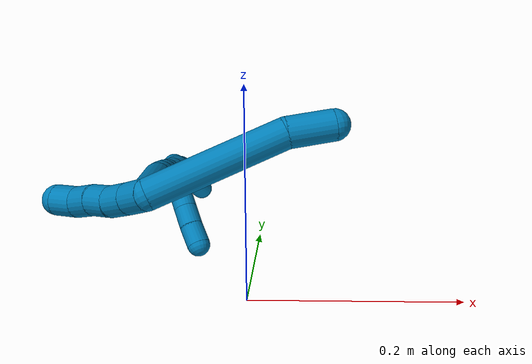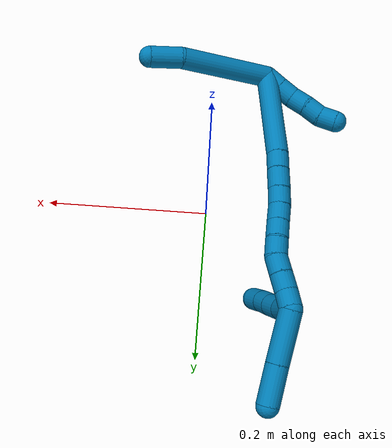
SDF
<sdf version="1.7">
 <world name="default">
  <model name="9">
   <static>0</static>
   <link name="9">
    <collision name="collision-cylinder-e_1_2_8">
     <pose>-0.049028 -0.027655 -0.003531 1.6978 -1.05374 -1.16776</pose>
     <geometry><cylinder><radius>0.0125</radius><length>0.112802</length></cylinder></geometry>
     <surface>
      <friction><ode><mu>1.16</mu><mu2>1.16</mu2><slip1>0</slip1><slip2>0</slip2></ode></friction>
      <contact><ode><kp>1e+06</kp><kd>1</kd><max_vel>0</max_vel><min_depth>0.001</min_depth></ode></contact>
     </surface>
    </collision>
    <visual name="visual-cylinder-e_1_2_8">
     <pose>-0.049028 -0.027655 -0.003531 1.6978 -1.05374 -1.16776</pose>
     <geometry><cylinder><radius>0.0125</radius><length>0.112802</length></cylinder></geometry>
     <material><ambient>0 0.490196 0.709804 1</ambient></material>
    </visual>
    <collision name="collision-cylinder-e_2_8_6">
     <pose>-0.114959 -0.062463 -0.004051 1.1722 -1.1404 -0.805001</pose>
     <geometry><cylinder><radius>0.0125</radius><length>0.037198</length></cylinder></geometry>
     <surface>
      <friction><ode><mu>1.16</mu><mu2>1.16</mu2><slip1>0</slip1><slip2>0</slip2></ode></friction>
      <contact><ode><kp>1e+06</kp><kd>1</kd><max_vel>0</max_vel><min_depth>0.001</min_depth></ode></contact>
     </surface>
    </collision>
    <visual name="visual-cylinder-e_2_8_6">
     <pose>-0.114959 -0.062463 -0.004051 1.1722 -1.1404 -0.805001</pose>
     <geometry><cylinder><radius>0.0125</radius><length>0.037198</length></cylinder></geometry>
     <material><ambient>0 0.490196 0.709804 1</ambient></material>
    </visual>
    <collision name="collision-cylinder-e_1_2_9">
     <pose>0.003534 0.008826 -0.0031 -1.90857 0.361209 -0.504355</pose>
     <geometry><cylinder><radius>0.0125</radius><length>0.02</length></cylinder></geometry>
     <surface>
      <friction><ode><mu>1.16</mu><mu2>1.16</mu2><slip1>0</slip1><slip2>0</slip2></ode></friction>
      <contact><ode><kp>1e+06</kp><kd>1</kd><max_vel>0</max_vel><min_depth>0.001</min_depth></ode></contact>
     </surface>
    </collision>
    <visual name="visual-cylinder-e_1_2_9">
     <pose>0.003534 0.008826 -0.0031 -1.90857 0.361209 -0.504355</pose>
     <geometry><cylinder><radius>0.0125</radius><length>0.02</length></cylinder></geometry>
     <material><ambient>0 0.490196 0.709804 1</ambient></material>
    </visual>
    <collision name="collision-cylinder-e_2_9_10">
     <pose>0.010756 0.026318 -0.009563 -1.94096 0.37774 -0.544554</pose>
     <geometry><cylinder><radius>0.0125</radius><length>0.02</length></cylinder></geometry>
     <surface>
      <friction><ode><mu>1.16</mu><mu2>1.16</mu2><slip1>0</slip1><slip2>0</slip2></ode></friction>
      <contact><ode><kp>1e+06</kp><kd>1</kd><max_vel>0</max_vel><min_depth>0.001</min_depth></ode></contact>
     </surface>
    </collision>
    <visual name="visual-cylinder-e_2_9_10">
     <pose>0.010756 0.026318 -0.009563 -1.94096 0.37774 -0.544554</pose>
     <geometry><cylinder><radius>0.0125</radius><length>0.02</length></cylinder></geometry>
     <material><ambient>0 0.490196 0.709804 1</ambient></material>
    </visual>
    <collision name="collision-cylinder-e_3_10_11">
     <pose>0.018203 0.042781 -0.017932 -2.14151 0.38528 -0.685824</pose>
     <geometry><cylinder><radius>0.0125</radius><length>0.02</length></cylinder></geometry>
     <surface>
      <friction><ode><mu>1.16</mu><mu2>1.16</mu2><slip1>0</slip1><slip2>0</slip2></ode></friction>
      <contact><ode><kp>1e+06</kp><kd>1</kd><max_vel>0</max_vel><min_depth>0.001</min_depth></ode></contact>
     </surface>
    </collision>
    <visual name="visual-cylinder-e_3_10_11">
     <pose>0.018203 0.042781 -0.017932 -2.14151 0.38528 -0.685824</pose>
     <geometry><cylinder><radius>0.0125</radius><length>0.02</length></cylinder></geometry>
     <material><ambient>0 0.490196 0.709804 1</ambient></material>
    </visual>
    <collision name="collision-cylinder-e_4_11_12">
     <pose>0.025685 0.059076 -0.026673 -1.98498 0.381586 -0.575362</pose>
     <geometry><cylinder><radius>0.0125</radius><length>0.02</length></cylinder></geometry>
     <surface>
      <friction><ode><mu>1.16</mu><mu2>1.16</mu2><slip1>0</slip1><slip2>0</slip2></ode></friction>
      <contact><ode><kp>1e+06</kp><kd>1</kd><max_vel>0</max_vel><min_depth>0.001</min_depth></ode></contact>
     </surface>
    </collision>
    <visual name="visual-cylinder-e_4_11_12">
     <pose>0.025685 0.059076 -0.026673 -1.98498 0.381586 -0.575362</pose>
     <geometry><cylinder><radius>0.0125</radius><length>0.02</length></cylinder></geometry>
     <material><ambient>0 0.490196 0.709804 1</ambient></material>
    </visual>
    <collision name="collision-cylinder-e_5_12_5">
     <pose>0.035128 0.074052 -0.035438 -2.23087 0.608834 -1.14089</pose>
     <geometry><cylinder><radius>0.0125</radius><length>0.02</length></cylinder></geometry>
     <surface>
      <friction><ode><mu>1.16</mu><mu2>1.16</mu2><slip1>0</slip1><slip2>0</slip2></ode></friction>
      <contact><ode><kp>1e+06</kp><kd>1</kd><max_vel>0</max_vel><min_depth>0.001</min_depth></ode></contact>
     </surface>
    </collision>
    <visual name="visual-cylinder-e_5_12_5">
     <pose>0.035128 0.074052 -0.035438 -2.23087 0.608834 -1.14089</pose>
     <geometry><cylinder><radius>0.0125</radius><length>0.02</length></cylinder></geometry>
     <material><ambient>0 0.490196 0.709804 1</ambient></material>
    </visual>
    <collision name="collision-cylinder-e_1_2_13">
     <pose>-0.025598 0.044525 -0.024667 -2.07671 -0.465962 0.765721</pose>
     <geometry><cylinder><radius>0.0125</radius><length>0.11395</length></cylinder></geometry>
     <surface>
      <friction><ode><mu>1.16</mu><mu2>1.16</mu2><slip1>0</slip1><slip2>0</slip2></ode></friction>
      <contact><ode><kp>1e+06</kp><kd>1</kd><max_vel>0</max_vel><min_depth>0.001</min_depth></ode></contact>
     </surface>
    </collision>
    <visual name="visual-cylinder-e_1_2_13">
     <pose>-0.025598 0.044525 -0.024667 -2.07671 -0.465962 0.765721</pose>
     <geometry><cylinder><radius>0.0125</radius><length>0.11395</length></cylinder></geometry>
     <material><ambient>0 0.490196 0.709804 1</ambient></material>
    </visual>
    <collision name="collision-cylinder-e_2_13_14">
     <pose>-0.056609 0.097094 -0.053404 -2.0391 -0.540684 0.846947</pose>
     <geometry><cylinder><radius>0.0125</radius><length>0.021031</length></cylinder></geometry>
     <surface>
      <friction><ode><mu>1.16</mu><mu2>1.16</mu2><slip1>0</slip1><slip2>0</slip2></ode></friction>
      <contact><ode><kp>1e+06</kp><kd>1</kd><max_vel>0</max_vel><min_depth>0.001</min_depth></ode></contact>
     </surface>
    </collision>
    <visual name="visual-cylinder-e_2_13_14">
     <pose>-0.056609 0.097094 -0.053404 -2.0391 -0.540684 0.846947</pose>
     <geometry><cylinder><radius>0.0125</radius><length>0.021031</length></cylinder></geometry>
     <material><ambient>0 0.490196 0.709804 1</ambient></material>
    </visual>
    <collision name="collision-cylinder-e_3_14_15">
     <pose>-0.068005 0.114639 -0.061955 -2.0116 -0.517807 0.791489</pose>
     <geometry><cylinder><radius>0.0125</radius><length>0.024178</length></cylinder></geometry>
     <surface>
      <friction><ode><mu>1.16</mu><mu2>1.16</mu2><slip1>0</slip1><slip2>0</slip2></ode></friction>
      <contact><ode><kp>1e+06</kp><kd>1</kd><max_vel>0</max_vel><min_depth>0.001</min_depth></ode></contact>
     </surface>
    </collision>
    <visual name="visual-cylinder-e_3_14_15">
     <pose>-0.068005 0.114639 -0.061955 -2.0116 -0.517807 0.791489</pose>
     <geometry><cylinder><radius>0.0125</radius><length>0.024178</length></cylinder></geometry>
     <material><ambient>0 0.490196 0.709804 1</ambient></material>
    </visual>
    <collision name="collision-cylinder-e_4_15_16">
     <pose>-0.079272 0.132065 -0.069864 -1.97894 -0.549126 0.809979</pose>
     <geometry><cylinder><radius>0.0125</radius><length>0.020245</length></cylinder></geometry>
     <surface>
      <friction><ode><mu>1.16</mu><mu2>1.16</mu2><slip1>0</slip1><slip2>0</slip2></ode></friction>
      <contact><ode><kp>1e+06</kp><kd>1</kd><max_vel>0</max_vel><min_depth>0.001</min_depth></ode></contact>
     </surface>
    </collision>
    <visual name="visual-cylinder-e_4_15_16">
     <pose>-0.079272 0.132065 -0.069864 -1.97894 -0.549126 0.809979</pose>
     <geometry><cylinder><radius>0.0125</radius><length>0.020245</length></cylinder></geometry>
     <material><ambient>0 0.490196 0.709804 1</ambient></material>
    </visual>
    <collision name="collision-cylinder-e_5_16_17">
     <pose>-0.090674 0.147294 -0.076821 -2.02096 -0.64615 0.980405</pose>
     <geometry><cylinder><radius>0.0125</radius><length>0.020322</length></cylinder></geometry>
     <surface>
      <friction><ode><mu>1.16</mu><mu2>1.16</mu2><slip1>0</slip1><slip2>0</slip2></ode></friction>
      <contact><ode><kp>1e+06</kp><kd>1</kd><max_vel>0</max_vel><min_depth>0.001</min_depth></ode></contact>
     </surface>
    </collision>
    <visual name="visual-cylinder-e_5_16_17">
     <pose>-0.090674 0.147294 -0.076821 -2.02096 -0.64615 0.980405</pose>
     <geometry><cylinder><radius>0.0125</radius><length>0.020322</length></cylinder></geometry>
     <material><ambient>0 0.490196 0.709804 1</ambient></material>
    </visual>
    <collision name="collision-cylinder-e_6_17_18">
     <pose>-0.102832 0.161705 -0.084284 -2.0763 -0.639442 1.02349</pose>
     <geometry><cylinder><radius>0.0125</radius><length>0.020244</length></cylinder></geometry>
     <surface>
      <friction><ode><mu>1.16</mu><mu2>1.16</mu2><slip1>0</slip1><slip2>0</slip2></ode></friction>
      <contact><ode><kp>1e+06</kp><kd>1</kd><max_vel>0</max_vel><min_depth>0.001</min_depth></ode></contact>
     </surface>
    </collision>
    <visual name="visual-cylinder-e_6_17_18">
     <pose>-0.102832 0.161705 -0.084284 -2.0763 -0.639442 1.02349</pose>
     <geometry><cylinder><radius>0.0125</radius><length>0.020244</length></cylinder></geometry>
     <material><ambient>0 0.490196 0.709804 1</ambient></material>
    </visual>
    <collision name="collision-cylinder-e_7_18_19">
     <pose>-0.114456 0.176652 -0.090939 -1.90492 -0.592194 0.810212</pose>
     <geometry><cylinder><radius>0.0125</radius><length>0.020004</length></cylinder></geometry>
     <surface>
      <friction><ode><mu>1.16</mu><mu2>1.16</mu2><slip1>0</slip1><slip2>0</slip2></ode></friction>
      <contact><ode><kp>1e+06</kp><kd>1</kd><max_vel>0</max_vel><min_depth>0.001</min_depth></ode></contact>
     </surface>
    </collision>
    <visual name="visual-cylinder-e_7_18_19">
     <pose>-0.114456 0.176652 -0.090939 -1.90492 -0.592194 0.810212</pose>
     <geometry><cylinder><radius>0.0125</radius><length>0.020004</length></cylinder></geometry>
     <material><ambient>0 0.490196 0.709804 1</ambient></material>
    </visual>
    <collision name="collision-cylinder-e_8_19_20">
     <pose>-0.122961 0.193077 -0.097899 -2.02938 -0.296278 0.471284</pose>
     <geometry><cylinder><radius>0.0125</radius><length>0.020022</length></cylinder></geometry>
     <surface>
      <friction><ode><mu>1.16</mu><mu2>1.16</mu2><slip1>0</slip1><slip2>0</slip2></ode></friction>
      <contact><ode><kp>1e+06</kp><kd>1</kd><max_vel>0</max_vel><min_depth>0.001</min_depth></ode></contact>
     </surface>
    </collision>
    <visual name="visual-cylinder-e_8_19_20">
     <pose>-0.122961 0.193077 -0.097899 -2.02938 -0.296278 0.471284</pose>
     <geometry><cylinder><radius>0.0125</radius><length>0.020022</length></cylinder></geometry>
     <material><ambient>0 0.490196 0.709804 1</ambient></material>
    </visual>
    <collision name="collision-cylinder-e_9_20_21">
     <pose>-0.128541 0.210524 -0.105934 -1.97559 -0.268966 0.404713</pose>
     <geometry><cylinder><radius>0.0125</radius><length>0.020001</length></cylinder></geometry>
     <surface>
      <friction><ode><mu>1.16</mu><mu2>1.16</mu2><slip1>0</slip1><slip2>0</slip2></ode></friction>
      <contact><ode><kp>1e+06</kp><kd>1</kd><max_vel>0</max_vel><min_depth>0.001</min_depth></ode></contact>
     </surface>
    </collision>
    <visual name="visual-cylinder-e_9_20_21">
     <pose>-0.128541 0.210524 -0.105934 -1.97559 -0.268966 0.404713</pose>
     <geometry><cylinder><radius>0.0125</radius><length>0.020001</length></cylinder></geometry>
     <material><ambient>0 0.490196 0.709804 1</ambient></material>
    </visual>
    <collision name="collision-cylinder-e_10_21_1">
     <pose>-0.134712 0.227299 -0.114736 -2.13476 -0.358964 0.636476</pose>
     <geometry><cylinder><radius>0.0125</radius><length>0.020002</length></cylinder></geometry>
     <surface>
      <friction><ode><mu>1.16</mu><mu2>1.16</mu2><slip1>0</slip1><slip2>0</slip2></ode></friction>
      <contact><ode><kp>1e+06</kp><kd>1</kd><max_vel>0</max_vel><min_depth>0.001</min_depth></ode></contact>
     </surface>
    </collision>
    <visual name="visual-cylinder-e_10_21_1">
     <pose>-0.134712 0.227299 -0.114736 -2.13476 -0.358964 0.636476</pose>
     <geometry><cylinder><radius>0.0125</radius><length>0.020002</length></cylinder></geometry>
     <material><ambient>0 0.490196 0.709804 1</ambient></material>
    </visual>
    <collision name="collision-cylinder-e_1_1_22">
     <pose>-0.155778 0.257728 -0.117988 -1.49305 -0.660697 0.614395</pose>
     <geometry><cylinder><radius>0.0125</radius><length>0.057204</length></cylinder></geometry>
     <surface>
      <friction><ode><mu>1.16</mu><mu2>1.16</mu2><slip1>0</slip1><slip2>0</slip2></ode></friction>
      <contact><ode><kp>1e+06</kp><kd>1</kd><max_vel>0</max_vel><min_depth>0.001</min_depth></ode></contact>
     </surface>
    </collision>
    <visual name="visual-cylinder-e_1_1_22">
     <pose>-0.155778 0.257728 -0.117988 -1.49305 -0.660697 0.614395</pose>
     <geometry><cylinder><radius>0.0125</radius><length>0.057204</length></cylinder></geometry>
     <material><ambient>0 0.490196 0.709804 1</ambient></material>
    </visual>
    <collision name="collision-cylinder-e_2_22_4">
     <pose>-0.186499 0.297102 -0.115775 -1.5436 -0.662935 0.646374</pose>
     <geometry><cylinder><radius>0.0125</radius><length>0.042796</length></cylinder></geometry>
     <surface>
      <friction><ode><mu>1.16</mu><mu2>1.16</mu2><slip1>0</slip1><slip2>0</slip2></ode></friction>
      <contact><ode><kp>1e+06</kp><kd>1</kd><max_vel>0</max_vel><min_depth>0.001</min_depth></ode></contact>
     </surface>
    </collision>
    <visual name="visual-cylinder-e_2_22_4">
     <pose>-0.186499 0.297102 -0.115775 -1.5436 -0.662935 0.646374</pose>
     <geometry><cylinder><radius>0.0125</radius><length>0.042796</length></cylinder></geometry>
     <material><ambient>0 0.490196 0.709804 1</ambient></material>
    </visual>
    <collision name="collision-cylinder-e_1_1_23">
     <pose>-0.136796 0.236644 -0.105642 -0.101169 0.100548 -0.005095</pose>
     <geometry><cylinder><radius>0.0125</radius><length>0.028488</length></cylinder></geometry>
     <surface>
      <friction><ode><mu>1.16</mu><mu2>1.16</mu2><slip1>0</slip1><slip2>0</slip2></ode></friction>
      <contact><ode><kp>1e+06</kp><kd>1</kd><max_vel>0</max_vel><min_depth>0.001</min_depth></ode></contact>
     </surface>
    </collision>
    <visual name="visual-cylinder-e_1_1_23">
     <pose>-0.136796 0.236644 -0.105642 -0.101169 0.100548 -0.005095</pose>
     <geometry><cylinder><radius>0.0125</radius><length>0.028488</length></cylinder></geometry>
     <material><ambient>0 0.490196 0.709804 1</ambient></material>
    </visual>
    <collision name="collision-cylinder-e_2_23_24">
     <pose>-0.134569 0.237179 -0.078708 0.069733 0.061879 0.002159</pose>
     <geometry><cylinder><radius>0.0125</radius><length>0.025779</length></cylinder></geometry>
     <surface>
      <friction><ode><mu>1.16</mu><mu2>1.16</mu2><slip1>0</slip1><slip2>0</slip2></ode></friction>
      <contact><ode><kp>1e+06</kp><kd>1</kd><max_vel>0</max_vel><min_depth>0.001</min_depth></ode></contact>
     </surface>
    </collision>
    <visual name="visual-cylinder-e_2_23_24">
     <pose>-0.134569 0.237179 -0.078708 0.069733 0.061879 0.002159</pose>
     <geometry><cylinder><radius>0.0125</radius><length>0.025779</length></cylinder></geometry>
     <material><ambient>0 0.490196 0.709804 1</ambient></material>
    </visual>
    <collision name="collision-cylinder-e_3_24_25">
     <pose>-0.133039 0.235127 -0.054659 0.102696 0.064878 0.003335</pose>
     <geometry><cylinder><radius>0.0125</radius><length>0.022598</length></cylinder></geometry>
     <surface>
      <friction><ode><mu>1.16</mu><mu2>1.16</mu2><slip1>0</slip1><slip2>0</slip2></ode></friction>
      <contact><ode><kp>1e+06</kp><kd>1</kd><max_vel>0</max_vel><min_depth>0.001</min_depth></ode></contact>
     </surface>
    </collision>
    <visual name="visual-cylinder-e_3_24_25">
     <pose>-0.133039 0.235127 -0.054659 0.102696 0.064878 0.003335</pose>
     <geometry><cylinder><radius>0.0125</radius><length>0.022598</length></cylinder></geometry>
     <material><ambient>0 0.490196 0.709804 1</ambient></material>
    </visual>
    <collision name="collision-cylinder-e_4_25_3">
     <pose>-0.132326 0.23305 -0.031913 0.079735 -0.001675 -6.7e-05</pose>
     <geometry><cylinder><radius>0.0125</radius><length>0.023134</length></cylinder></geometry>
     <surface>
      <friction><ode><mu>1.16</mu><mu2>1.16</mu2><slip1>0</slip1><slip2>0</slip2></ode></friction>
      <contact><ode><kp>1e+06</kp><kd>1</kd><max_vel>0</max_vel><min_depth>0.001</min_depth></ode></contact>
     </surface>
    </collision>
    <visual name="visual-cylinder-e_4_25_3">
     <pose>-0.132326 0.23305 -0.031913 0.079735 -0.001675 -6.7e-05</pose>
     <geometry><cylinder><radius>0.0125</radius><length>0.023134</length></cylinder></geometry>
     <material><ambient>0 0.490196 0.709804 1</ambient></material>
    </visual>
    <collision name="collision-sphere-3">
     <pose>-0.132346 0.232128 -0.020382 0 -0 0</pose>
     <geometry><sphere><radius>0.0125</radius></sphere></geometry>
     <surface>
      <friction><ode><mu>1.16</mu><mu2>1.16</mu2><slip1>0</slip1><slip2>0</slip2></ode></friction>
      <contact><ode><kp>1e+06</kp><kd>1</kd><max_vel>0</max_vel><min_depth>0.001</min_depth></ode></contact>
     </surface>
    </collision>
    <visual name="visual-sphere-3">
     <pose>-0.132346 0.232128 -0.020382 0 -0 0</pose>
     <geometry><sphere><radius>0.0125</radius></sphere></geometry>
     <material><ambient>0 0.490196 0.709804 1</ambient></material>
    </visual>
    <collision name="collision-sphere-25">
     <pose>-0.132307 0.233971 -0.043443 0 -0 0</pose>
     <geometry><sphere><radius>0.0125</radius></sphere></geometry>
     <surface>
      <friction><ode><mu>1.16</mu><mu2>1.16</mu2><slip1>0</slip1><slip2>0</slip2></ode></friction>
      <contact><ode><kp>1e+06</kp><kd>1</kd><max_vel>0</max_vel><min_depth>0.001</min_depth></ode></contact>
     </surface>
    </collision>
    <visual name="visual-sphere-25">
     <pose>-0.132307 0.233971 -0.043443 0 -0 0</pose>
     <geometry><sphere><radius>0.0125</radius></sphere></geometry>
     <material><ambient>0 0.490196 0.709804 1</ambient></material>
    </visual>
    <collision name="collision-sphere-24">
     <pose>-0.133772 0.236283 -0.065874 0 -0 0</pose>
     <geometry><sphere><radius>0.0125</radius></sphere></geometry>
     <surface>
      <friction><ode><mu>1.16</mu><mu2>1.16</mu2><slip1>0</slip1><slip2>0</slip2></ode></friction>
      <contact><ode><kp>1e+06</kp><kd>1</kd><max_vel>0</max_vel><min_depth>0.001</min_depth></ode></contact>
     </surface>
    </collision>
    <visual name="visual-sphere-24">
     <pose>-0.133772 0.236283 -0.065874 0 -0 0</pose>
     <geometry><sphere><radius>0.0125</radius></sphere></geometry>
     <material><ambient>0 0.490196 0.709804 1</ambient></material>
    </visual>
    <collision name="collision-sphere-23">
     <pose>-0.135366 0.238076 -0.091542 0 -0 0</pose>
     <geometry><sphere><radius>0.0125</radius></sphere></geometry>
     <surface>
      <friction><ode><mu>1.16</mu><mu2>1.16</mu2><slip1>0</slip1><slip2>0</slip2></ode></friction>
      <contact><ode><kp>1e+06</kp><kd>1</kd><max_vel>0</max_vel><min_depth>0.001</min_depth></ode></contact>
     </surface>
    </collision>
    <visual name="visual-sphere-23">
     <pose>-0.135366 0.238076 -0.091542 0 -0 0</pose>
     <geometry><sphere><radius>0.0125</radius></sphere></geometry>
     <material><ambient>0 0.490196 0.709804 1</ambient></material>
    </visual>
    <collision name="collision-sphere-4">
     <pose>-0.199668 0.313962 -0.115317 0 -0 0</pose>
     <geometry><sphere><radius>0.0125</radius></sphere></geometry>
     <surface>
      <friction><ode><mu>1.16</mu><mu2>1.16</mu2><slip1>0</slip1><slip2>0</slip2></ode></friction>
      <contact><ode><kp>1e+06</kp><kd>1</kd><max_vel>0</max_vel><min_depth>0.001</min_depth></ode></contact>
     </surface>
    </collision>
    <visual name="visual-sphere-4">
     <pose>-0.199668 0.313962 -0.115317 0 -0 0</pose>
     <geometry><sphere><radius>0.0125</radius></sphere></geometry>
     <material><ambient>0 0.490196 0.709804 1</ambient></material>
    </visual>
    <collision name="collision-sphere-22">
     <pose>-0.17333 0.280242 -0.116234 0 -0 0</pose>
     <geometry><sphere><radius>0.0125</radius></sphere></geometry>
     <surface>
      <friction><ode><mu>1.16</mu><mu2>1.16</mu2><slip1>0</slip1><slip2>0</slip2></ode></friction>
      <contact><ode><kp>1e+06</kp><kd>1</kd><max_vel>0</max_vel><min_depth>0.001</min_depth></ode></contact>
     </surface>
    </collision>
    <visual name="visual-sphere-22">
     <pose>-0.17333 0.280242 -0.116234 0 -0 0</pose>
     <geometry><sphere><radius>0.0125</radius></sphere></geometry>
     <material><ambient>0 0.490196 0.709804 1</ambient></material>
    </visual>
    <collision name="collision-sphere-1">
     <pose>-0.138226 0.235213 -0.119742 0 -0 0</pose>
     <geometry><sphere><radius>0.0125</radius></sphere></geometry>
     <surface>
      <friction><ode><mu>1.16</mu><mu2>1.16</mu2><slip1>0</slip1><slip2>0</slip2></ode></friction>
      <contact><ode><kp>1e+06</kp><kd>1</kd><max_vel>0</max_vel><min_depth>0.001</min_depth></ode></contact>
     </surface>
    </collision>
    <visual name="visual-sphere-1">
     <pose>-0.138226 0.235213 -0.119742 0 -0 0</pose>
     <geometry><sphere><radius>0.0125</radius></sphere></geometry>
     <material><ambient>0 0.490196 0.709804 1</ambient></material>
    </visual>
    <collision name="collision-sphere-21">
     <pose>-0.131199 0.219386 -0.109731 0 -0 0</pose>
     <geometry><sphere><radius>0.0125</radius></sphere></geometry>
     <surface>
      <friction><ode><mu>1.16</mu><mu2>1.16</mu2><slip1>0</slip1><slip2>0</slip2></ode></friction>
      <contact><ode><kp>1e+06</kp><kd>1</kd><max_vel>0</max_vel><min_depth>0.001</min_depth></ode></contact>
     </surface>
    </collision>
    <visual name="visual-sphere-21">
     <pose>-0.131199 0.219386 -0.109731 0 -0 0</pose>
     <geometry><sphere><radius>0.0125</radius></sphere></geometry>
     <material><ambient>0 0.490196 0.709804 1</ambient></material>
    </visual>
    <collision name="collision-sphere-11">
     <pose>0.021961 0.05058 -0.022938 0 -0 0</pose>
     <geometry><sphere><radius>0.0125</radius></sphere></geometry>
     <surface>
      <friction><ode><mu>1.16</mu><mu2>1.16</mu2><slip1>0</slip1><slip2>0</slip2></ode></friction>
      <contact><ode><kp>1e+06</kp><kd>1</kd><max_vel>0</max_vel><min_depth>0.001</min_depth></ode></contact>
     </surface>
    </collision>
    <visual name="visual-sphere-11">
     <pose>0.021961 0.05058 -0.022938 0 -0 0</pose>
     <geometry><sphere><radius>0.0125</radius></sphere></geometry>
     <material><ambient>0 0.490196 0.709804 1</ambient></material>
    </visual>
    <collision name="collision-sphere-10">
     <pose>0.014445 0.034983 -0.012925 0 -0 0</pose>
     <geometry><sphere><radius>0.0125</radius></sphere></geometry>
     <surface>
      <friction><ode><mu>1.16</mu><mu2>1.16</mu2><slip1>0</slip1><slip2>0</slip2></ode></friction>
      <contact><ode><kp>1e+06</kp><kd>1</kd><max_vel>0</max_vel><min_depth>0.001</min_depth></ode></contact>
     </surface>
    </collision>
    <visual name="visual-sphere-10">
     <pose>0.014445 0.034983 -0.012925 0 -0 0</pose>
     <geometry><sphere><radius>0.0125</radius></sphere></geometry>
     <material><ambient>0 0.490196 0.709804 1</ambient></material>
    </visual>
    <collision name="collision-sphere-6">
     <pose>-0.131862 -0.069614 -0.001039 0 -0 0</pose>
     <geometry><sphere><radius>0.0125</radius></sphere></geometry>
     <surface>
      <friction><ode><mu>1.16</mu><mu2>1.16</mu2><slip1>0</slip1><slip2>0</slip2></ode></friction>
      <contact><ode><kp>1e+06</kp><kd>1</kd><max_vel>0</max_vel><min_depth>0.001</min_depth></ode></contact>
     </surface>
    </collision>
    <visual name="visual-sphere-6">
     <pose>-0.131862 -0.069614 -0.001039 0 -0 0</pose>
     <geometry><sphere><radius>0.0125</radius></sphere></geometry>
     <material><ambient>0 0.490196 0.709804 1</ambient></material>
    </visual>
    <collision name="collision-sphere-9">
     <pose>0.007068 0.017652 -0.0062 0 -0 0</pose>
     <geometry><sphere><radius>0.0125</radius></sphere></geometry>
     <surface>
      <friction><ode><mu>1.16</mu><mu2>1.16</mu2><slip1>0</slip1><slip2>0</slip2></ode></friction>
      <contact><ode><kp>1e+06</kp><kd>1</kd><max_vel>0</max_vel><min_depth>0.001</min_depth></ode></contact>
     </surface>
    </collision>
    <visual name="visual-sphere-9">
     <pose>0.007068 0.017652 -0.0062 0 -0 0</pose>
     <geometry><sphere><radius>0.0125</radius></sphere></geometry>
     <material><ambient>0 0.490196 0.709804 1</ambient></material>
    </visual>
    <collision name="collision-sphere-2">
     <geometry><sphere><radius>0.0125</radius></sphere></geometry>
     <surface>
      <friction><ode><mu>1.16</mu><mu2>1.16</mu2><slip1>0</slip1><slip2>0</slip2></ode></friction>
      <contact><ode><kp>1e+06</kp><kd>1</kd><max_vel>0</max_vel><min_depth>0.001</min_depth></ode></contact>
     </surface>
    </collision>
    <visual name="visual-sphere-2">
     <geometry><sphere><radius>0.0125</radius></sphere></geometry>
     <material><ambient>0 0.490196 0.709804 1</ambient></material>
    </visual>
    <collision name="collision-sphere-19">
     <pose>-0.120038 0.184491 -0.09366 0 -0 0</pose>
     <geometry><sphere><radius>0.0125</radius></sphere></geometry>
     <surface>
      <friction><ode><mu>1.16</mu><mu2>1.16</mu2><slip1>0</slip1><slip2>0</slip2></ode></friction>
      <contact><ode><kp>1e+06</kp><kd>1</kd><max_vel>0</max_vel><min_depth>0.001</min_depth></ode></contact>
     </surface>
    </collision>
    <visual name="visual-sphere-19">
     <pose>-0.120038 0.184491 -0.09366 0 -0 0</pose>
     <geometry><sphere><radius>0.0125</radius></sphere></geometry>
     <material><ambient>0 0.490196 0.709804 1</ambient></material>
    </visual>
    <collision name="collision-sphere-8">
     <pose>-0.098056 -0.055311 -0.007063 0 -0 0</pose>
     <geometry><sphere><radius>0.0125</radius></sphere></geometry>
     <surface>
      <friction><ode><mu>1.16</mu><mu2>1.16</mu2><slip1>0</slip1><slip2>0</slip2></ode></friction>
      <contact><ode><kp>1e+06</kp><kd>1</kd><max_vel>0</max_vel><min_depth>0.001</min_depth></ode></contact>
     </surface>
    </collision>
    <visual name="visual-sphere-8">
     <pose>-0.098056 -0.055311 -0.007063 0 -0 0</pose>
     <geometry><sphere><radius>0.0125</radius></sphere></geometry>
     <material><ambient>0 0.490196 0.709804 1</ambient></material>
    </visual>
    <collision name="collision-sphere-12">
     <pose>0.029409 0.067572 -0.030408 0 -0 0</pose>
     <geometry><sphere><radius>0.0125</radius></sphere></geometry>
     <surface>
      <friction><ode><mu>1.16</mu><mu2>1.16</mu2><slip1>0</slip1><slip2>0</slip2></ode></friction>
      <contact><ode><kp>1e+06</kp><kd>1</kd><max_vel>0</max_vel><min_depth>0.001</min_depth></ode></contact>
     </surface>
    </collision>
    <visual name="visual-sphere-12">
     <pose>0.029409 0.067572 -0.030408 0 -0 0</pose>
     <geometry><sphere><radius>0.0125</radius></sphere></geometry>
     <material><ambient>0 0.490196 0.709804 1</ambient></material>
    </visual>
    <collision name="collision-sphere-5">
     <pose>0.040847 0.080532 -0.040468 0 -0 0</pose>
     <geometry><sphere><radius>0.0125</radius></sphere></geometry>
     <surface>
      <friction><ode><mu>1.16</mu><mu2>1.16</mu2><slip1>0</slip1><slip2>0</slip2></ode></friction>
      <contact><ode><kp>1e+06</kp><kd>1</kd><max_vel>0</max_vel><min_depth>0.001</min_depth></ode></contact>
     </surface>
    </collision>
    <visual name="visual-sphere-5">
     <pose>0.040847 0.080532 -0.040468 0 -0 0</pose>
     <geometry><sphere><radius>0.0125</radius></sphere></geometry>
     <material><ambient>0 0.490196 0.709804 1</ambient></material>
    </visual>
    <collision name="collision-sphere-13">
     <pose>-0.051196 0.089049 -0.049334 0 -0 0</pose>
     <geometry><sphere><radius>0.0125</radius></sphere></geometry>
     <surface>
      <friction><ode><mu>1.16</mu><mu2>1.16</mu2><slip1>0</slip1><slip2>0</slip2></ode></friction>
      <contact><ode><kp>1e+06</kp><kd>1</kd><max_vel>0</max_vel><min_depth>0.001</min_depth></ode></contact>
     </surface>
    </collision>
    <visual name="visual-sphere-13">
     <pose>-0.051196 0.089049 -0.049334 0 -0 0</pose>
     <geometry><sphere><radius>0.0125</radius></sphere></geometry>
     <material><ambient>0 0.490196 0.709804 1</ambient></material>
    </visual>
    <collision name="collision-sphere-14">
     <pose>-0.062021 0.105139 -0.057473 0 -0 0</pose>
     <geometry><sphere><radius>0.0125</radius></sphere></geometry>
     <surface>
      <friction><ode><mu>1.16</mu><mu2>1.16</mu2><slip1>0</slip1><slip2>0</slip2></ode></friction>
      <contact><ode><kp>1e+06</kp><kd>1</kd><max_vel>0</max_vel><min_depth>0.001</min_depth></ode></contact>
     </surface>
    </collision>
    <visual name="visual-sphere-14">
     <pose>-0.062021 0.105139 -0.057473 0 -0 0</pose>
     <geometry><sphere><radius>0.0125</radius></sphere></geometry>
     <material><ambient>0 0.490196 0.709804 1</ambient></material>
    </visual>
    <collision name="collision-sphere-15">
     <pose>-0.073989 0.124139 -0.066437 0 -0 0</pose>
     <geometry><sphere><radius>0.0125</radius></sphere></geometry>
     <surface>
      <friction><ode><mu>1.16</mu><mu2>1.16</mu2><slip1>0</slip1><slip2>0</slip2></ode></friction>
      <contact><ode><kp>1e+06</kp><kd>1</kd><max_vel>0</max_vel><min_depth>0.001</min_depth></ode></contact>
     </surface>
    </collision>
    <visual name="visual-sphere-15">
     <pose>-0.073989 0.124139 -0.066437 0 -0 0</pose>
     <geometry><sphere><radius>0.0125</radius></sphere></geometry>
     <material><ambient>0 0.490196 0.709804 1</ambient></material>
    </visual>
    <collision name="collision-sphere-16">
     <pose>-0.084556 0.13999 -0.073291 0 -0 0</pose>
     <geometry><sphere><radius>0.0125</radius></sphere></geometry>
     <surface>
      <friction><ode><mu>1.16</mu><mu2>1.16</mu2><slip1>0</slip1><slip2>0</slip2></ode></friction>
      <contact><ode><kp>1e+06</kp><kd>1</kd><max_vel>0</max_vel><min_depth>0.001</min_depth></ode></contact>
     </surface>
    </collision>
    <visual name="visual-sphere-16">
     <pose>-0.084556 0.13999 -0.073291 0 -0 0</pose>
     <geometry><sphere><radius>0.0125</radius></sphere></geometry>
     <material><ambient>0 0.490196 0.709804 1</ambient></material>
    </visual>
    <collision name="collision-sphere-17">
     <pose>-0.096792 0.154599 -0.080351 0 -0 0</pose>
     <geometry><sphere><radius>0.0125</radius></sphere></geometry>
     <surface>
      <friction><ode><mu>1.16</mu><mu2>1.16</mu2><slip1>0</slip1><slip2>0</slip2></ode></friction>
      <contact><ode><kp>1e+06</kp><kd>1</kd><max_vel>0</max_vel><min_depth>0.001</min_depth></ode></contact>
     </surface>
    </collision>
    <visual name="visual-sphere-17">
     <pose>-0.096792 0.154599 -0.080351 0 -0 0</pose>
     <geometry><sphere><radius>0.0125</radius></sphere></geometry>
     <material><ambient>0 0.490196 0.709804 1</ambient></material>
    </visual>
    <collision name="collision-sphere-18">
     <pose>-0.108873 0.168812 -0.088217 0 -0 0</pose>
     <geometry><sphere><radius>0.0125</radius></sphere></geometry>
     <surface>
      <friction><ode><mu>1.16</mu><mu2>1.16</mu2><slip1>0</slip1><slip2>0</slip2></ode></friction>
      <contact><ode><kp>1e+06</kp><kd>1</kd><max_vel>0</max_vel><min_depth>0.001</min_depth></ode></contact>
     </surface>
    </collision>
    <visual name="visual-sphere-18">
     <pose>-0.108873 0.168812 -0.088217 0 -0 0</pose>
     <geometry><sphere><radius>0.0125</radius></sphere></geometry>
     <material><ambient>0 0.490196 0.709804 1</ambient></material>
    </visual>
    <collision name="collision-sphere-20">
     <pose>-0.125884 0.201662 -0.102138 0 -0 0</pose>
     <geometry><sphere><radius>0.0125</radius></sphere></geometry>
     <surface>
      <friction><ode><mu>1.16</mu><mu2>1.16</mu2><slip1>0</slip1><slip2>0</slip2></ode></friction>
      <contact><ode><kp>1e+06</kp><kd>1</kd><max_vel>0</max_vel><min_depth>0.001</min_depth></ode></contact>
     </surface>
    </collision>
    <visual name="visual-sphere-20">
     <pose>-0.125884 0.201662 -0.102138 0 -0 0</pose>
     <geometry><sphere><radius>0.0125</radius></sphere></geometry>
     <material><ambient>0 0.490196 0.709804 1</ambient></material>
    </visual>
    <inertial>
     <pose>-0.07942 0.113042 -0.052568 0 -0 0</pose>
     <mass>0.75</mass>
     <inertia>
      <ixx>0.000163</ixx>
      <ixy>0</ixy>
      <ixz>0</ixz>
      <iyy>0.000169</iyy>
      <iyz>0</iyz>
      <izz>0.000111</izz>
     </inertia>
    </inertial>
   </link>
   <pose>-0.062648 -0.11607 0.130976 -2.49476 0.037555 -2.5365</pose>
  </model>
 </world>
</sdf>
